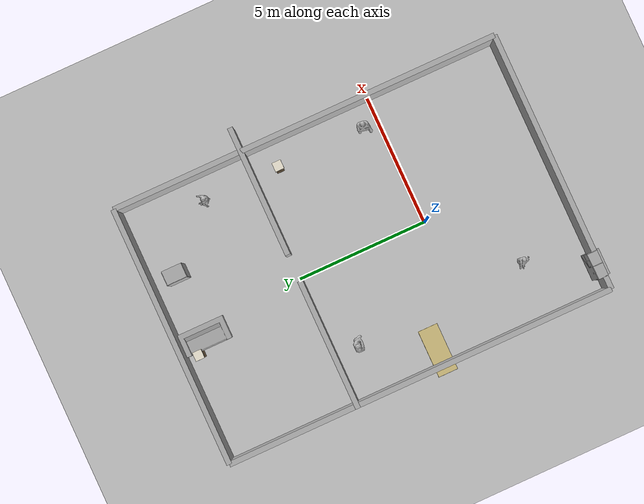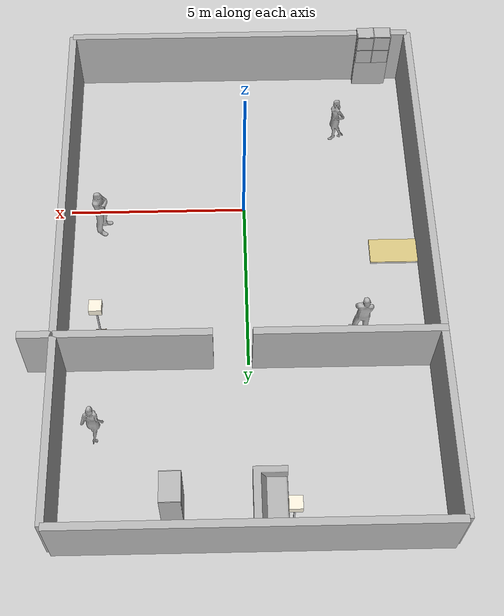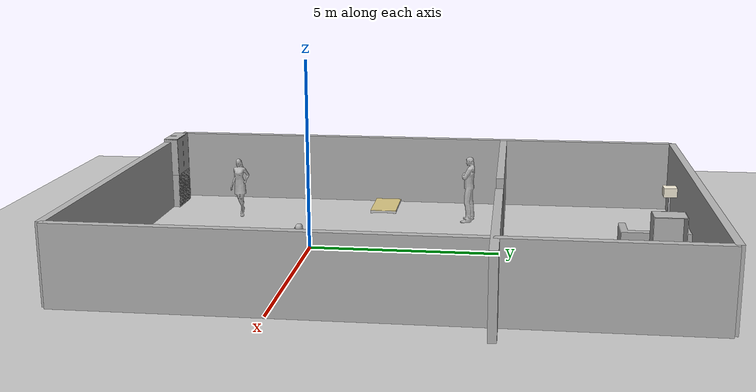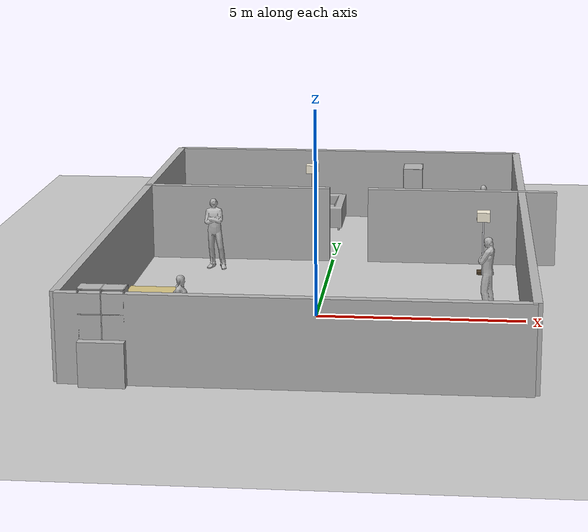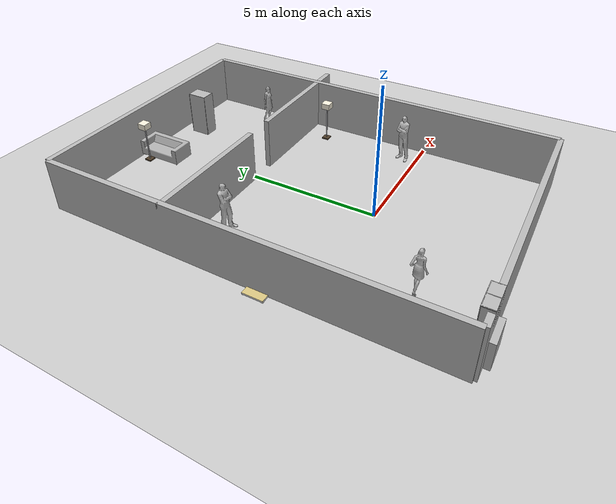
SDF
<sdf version="1.4">
 <world name="default">
  <physics type="ode">
   <gravity>0 0 -9.81</gravity>
   <ode>
    <solver><type>quick</type><iters>20</iters><sor>1.0</sor></solver>
    <constraints>
     <cfm>0.0</cfm>
     <erp>0.2</erp>
     <contact_max_correcting_vel>100.0</contact_max_correcting_vel>
     <contact_surface_layer>0.0</contact_surface_layer>
    </constraints>
   </ode>
   <real_time_update_rate>1000</real_time_update_rate>
   <max_step_size>0.001</max_step_size>
  </physics>
  <include><uri>model://sun</uri></include>
  <include><uri>model://ground_plane</uri></include>
  <model name="wall_1_model">
   <pose>0 -5 1 0 -0 0</pose>
   <static>1</static>
   <link name="wall_1_body">
    <inertial>
     <mass>1</mass>
     <inertia><ixx>1</ixx><ixy>0</ixy><ixz>0</ixz><iyy>1</iyy><iyz>0</iyz><izz>1</izz></inertia>
    </inertial>
    <collision name="collision"><geometry><box><size>10 0.2 2</size></box></geometry></collision>
    <visual name="visual"><geometry><box><size>10 0.2 2</size></box></geometry></visual>
   </link>
  </model>
  <model name="wall_2_model">
   <pose>0 10 1 0 -0 0</pose>
   <static>1</static>
   <link name="wall_2_body">
    <inertial>
     <mass>1</mass>
     <inertia><ixx>1</ixx><ixy>0</ixy><ixz>0</ixz><iyy>1</iyy><iyz>0</iyz><izz>1</izz></inertia>
    </inertial>
    <collision name="collision"><geometry><box><size>10 0.2 2</size></box></geometry></collision>
    <visual name="visual"><geometry><box><size>10 0.2 2</size></box></geometry></visual>
   </link>
  </model>
  <model name="wall_3_model">
   <pose>-5 2.5 1 0 -0 0</pose>
   <static>1</static>
   <link name="wall_3_body">
    <inertial>
     <mass>1</mass>
     <inertia><ixx>1</ixx><ixy>0</ixy><ixz>0</ixz><iyy>1</iyy><iyz>0</iyz><izz>1</izz></inertia>
    </inertial>
    <collision name="collision"><geometry><box><size>0.2 15 2</size></box></geometry></collision>
    <visual name="visual"><geometry><box><size>0.2 15 2</size></box></geometry></visual>
   </link>
  </model>
  <model name="wall_4_model">
   <pose>5 2.5 1 0 -0 0</pose>
   <static>1</static>
   <link name="wall_4_body">
    <inertial>
     <mass>1</mass>
     <inertia><ixx>1</ixx><ixy>0</ixy><ixz>0</ixz><iyy>1</iyy><iyz>0</iyz><izz>1</izz></inertia>
    </inertial>
    <collision name="collision"><geometry><box><size>0.2 15 2</size></box></geometry></collision>
    <visual name="visual"><geometry><box><size>0.2 15 2</size></box></geometry></visual>
   </link>
  </model>
  <model name="wall_5_model">
   <pose>-2.6 5 1 0 -0 0</pose>
   <static>1</static>
   <link name="wall_5_body">
    <inertial>
     <mass>1</mass>
     <inertia><ixx>1</ixx><ixy>0</ixy><ixz>0</ixz><iyy>1</iyy><iyz>0</iyz><izz>1</izz></inertia>
    </inertial>
    <collision name="collision"><geometry><box><size>5 0.2 2</size></box></geometry></collision>
    <visual name="visual"><geometry><box><size>5 0.2 2</size></box></geometry></visual>
   </link>
  </model>
  <model name="wall_6_model">
   <pose>3.43 5 1 0 -0 0</pose>
   <static>1</static>
   <link name="wall_6_body">
    <inertial>
     <mass>1</mass>
     <inertia><ixx>1</ixx><ixy>0</ixy><ixz>0</ixz><iyy>1</iyy><iyz>0</iyz><izz>1</izz></inertia>
    </inertial>
    <collision name="collision"><geometry><box><size>5 0.2 2</size></box></geometry></collision>
    <visual name="visual"><geometry><box><size>5 0.2 2</size></box></geometry></visual>
   </link>
  </model>
  <include>
   <uri>model://wardrobe</uri>
   <pose>2.000000 9.000000 0.000000 0.000000 0.000000 0.000000</pose>
  </include>
  <include>
   <uri>model://closet</uri>
   <pose>-4.000000 -5.000000 0.000000 0.000000 0.000000 0.000000</pose>
  </include>
  <include><uri>model://bench</uri><pose>-4.465430 1.502710 0.000000 0.000000 0.000000 0.000000</pose></include>
  <include><uri>model://sofa</uri><pose>-0.518195 9.000000 0.000000 0.000000 0.000000 0.000000</pose></include>
  <include>
   <name>floor_lamp_0</name>
   <uri>model://floor_lamp</uri>
   <pose>-1.000000 9.417350 0.000000 0.000000 0.000000 0.000000</pose>
  </include>
  <include>
   <name>floor_lamp_1</name>
   <uri>model://floor_lamp</uri>
   <pose>4.000000 4.00000 0.000000 0.000000 0.000000 0.000000</pose>
  </include>
  <include>
   <name>male03</name>
   <uri>model://citizen_extras_male_03</uri>
   <pose>4.0 0.53 0.01 0.0125 0.0023 -1.718</pose>
  </include>
  <light type="point" name="male03light">
   <pose>3.6 0.53 1.6 0 0 0</pose>
   <diffuse>0.5 0.5 0.5 1</diffuse>
   <specular>0.1 0.1 0.1 1</specular>
   <attenuation>
    <range>1.0</range>
    <linear>0.01</linear>
    <constant>0.3</constant>
    <quadratic>0.0</quadratic>
   </attenuation>
   <direction>0 0 -1</direction>
   <spot><inner_angle>0.6</inner_angle><outer_angle>0.8</outer_angle><falloff>1.2</falloff></spot>
   <cast_shadows>false</cast_shadows>
  </light>
  <include>
   <name>female02</name>
   <uri>model://citizen_extras_female_02</uri>
   <pose>-2.84 -2.63 0.01 0 -0.025 1.683</pose>
  </include>
  <light type="point" name="female02light">
   <pose>-2.5 -2.63 1.5 0 0 0</pose>
   <diffuse>0.5 0.5 0.5 1</diffuse>
   <specular>0.1 0.1 0.1 1</specular>
   <attenuation>
    <range>1.0</range>
    <linear>0.01</linear>
    <constant>0.3</constant>
    <quadratic>0.0</quadratic>
   </attenuation>
   <direction>0 0 -1</direction>
   <spot><inner_angle>0.6</inner_angle><outer_angle>0.8</outer_angle><falloff>1.2</falloff></spot>
   <cast_shadows>false</cast_shadows>
  </light>
  <light type="point" name="female03light">
   <pose>-3.0 6.2 1.5 0 0 0</pose>
   <diffuse>0.5 0.5 0.5 1</diffuse>
   <specular>0.1 0.1 0.1 1</specular>
   <attenuation>
    <range>1.0</range>
    <linear>0.01</linear>
    <constant>0.3</constant>
    <quadratic>0.0</quadratic>
   </attenuation>
   <direction>0 0 -1</direction>
   <spot><inner_angle>0.6</inner_angle><outer_angle>0.8</outer_angle><falloff>1.2</falloff></spot>
   <cast_shadows>false</cast_shadows>
  </light>
  <include>
   <name>female02bis</name>
   <uri>model://citizen_extras_female_02</uri>
   <pose>4.000000 7.000000 0.000000 0.000000 0.000000 0.000000</pose>
  </include>
  <model name="drc_practice_weighted_door">
   <pose>0.167665 4.97339 0 0 -0 0</pose>
   <scale>1 1 1</scale>
   <link name="door">
    <pose>0.167667 4.97339 2.04 3.14159 1e-06 8e-06</pose>
    <velocity>-0 0 0 -0 -0 -0</velocity>
    <acceleration>-3e-06 -0 -9e-06 -3e-06 -4e-06 2e-06</acceleration>
    <wrench>-0.00012 -9e-06 -0.000367 0 -0 0</wrench>
   </link>
   <link name="frame">
    <pose>0.227665 4.97289 0 0 -0 0</pose>
    <velocity>-0 -0 -0 0 -0 0</velocity>
    <acceleration>1.2e-05 0 0 0 -0 0</acceleration>
    <wrench>0.000228 2e-06 5e-06 0 -0 0</wrench>
   </link>
   <link name="handles">
    <pose>0.982067 4.9034 1.05 2e-06 -1e-06 -3.14159</pose>
    <velocity>0 -0 -0 0 2.6e-05 0</velocity>
    <acceleration>-3e-06 1e-06 -1.5e-05 1e-05 8e-06 -1e-05</acceleration>
    <wrench>-7e-06 1e-06 -3e-05 0 -0 0</wrench>
   </link>
  </model>
  <light type="point" name="female02bislight">
   <pose>3.8 6.7 1.5 0 0 0</pose>
   <diffuse>0.5 0.5 0.5 1</diffuse>
   <specular>0.1 0.1 0.1 1</specular>
   <attenuation>
    <range>1.0</range>
    <linear>0.01</linear>
    <constant>0.3</constant>
    <quadratic>0.0</quadratic>
   </attenuation>
   <direction>0 0 -1</direction>
   <spot><inner_angle>0.6</inner_angle><outer_angle>0.8</outer_angle><falloff>1.2</falloff></spot>
   <cast_shadows>false</cast_shadows>
  </light>
  <include>
   <name>male03bis</name>
   <uri>model://citizen_extras_male_03</uri>
   <pose>-3.000000 4.000000 0.000000 0.000000 0.000000 0.000000</pose>
  </include>
  <light type="point" name="male03bislight">
   <pose>-2.9 3.7 1.5 0 0 0</pose>
   <diffuse>0.5 0.5 0.5 1</diffuse>
   <specular>0.1 0.1 0.1 1</specular>
   <attenuation>
    <range>1.0</range>
    <linear>0.01</linear>
    <constant>0.3</constant>
    <quadratic>0.0</quadratic>
   </attenuation>
   <direction>0 0 -1</direction>
   <spot><inner_angle>0.6</inner_angle><outer_angle>0.8</outer_angle><falloff>1.2</falloff></spot>
   <cast_shadows>false</cast_shadows>
  </light>
 </world>
</sdf>

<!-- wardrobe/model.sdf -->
<sdf version="1.6">
  <model name="rwc2022/wardrobe">
    <static>true</static>
    <link name="1_link">
      <collision name="1_col">
        <geometry>
          <box>
            <size>0.55 0.015 1.76</size>
          </box>
        </geometry>
      </collision>
      <visual name="1_vis">
        <geometry>
          <box>
            <size>0.55 0.015 1.76</size>
          </box>
        </geometry>
      </visual>
      <pose>0.0 -0.39 0.88 0 0 0</pose>
    </link>
    <link name="2_link">
      <collision name="2_col">
        <geometry>
          <box>
            <size>0.55 0.015 1.76</size>
          </box>
        </geometry>
      </collision>
      <visual name="2_vis">
        <geometry>
          <box>
            <size>0.55 0.015 1.76</size>
          </box>
        </geometry>
      </visual>
      <pose>0.0 0.39 0.88 0 0 0</pose>
    </link>
    <link name="3_link">
      <collision name="3_col">
        <geometry>
          <box>
            <size>0.015 0.795 1.76</size>
          </box>
        </geometry>
      </collision>
      <visual name="3_vis">
        <geometry>
          <box>
            <size>0.015 0.795 1.76</size>
          </box>
        </geometry>
      </visual>
      <pose>-0.2675 0.0 0.88 0 0 0</pose>
    </link>
    <link name="4_link">
      <collision name="4_col">
        <geometry>
          <box>
            <size>0.535 0.765 0.015</size>
          </box>
        </geometry>
      </collision>
      <visual name="4_vis">
        <geometry>
          <box>
            <size>0.535 0.765 0.015</size>
          </box>
        </geometry>
      </visual>
      <pose>0.0075 0.0 1.7525 0 0 0</pose>
    </link>
    <link name="5_link">
      <collision name="5_col">
        <geometry>
          <box>
            <size>0.535 0.765 0.02</size>
          </box>
        </geometry>
      </collision>
      <visual name="5_vis">
        <geometry>
          <box>
            <size>0.535 0.765 0.02</size>
          </box>
        </geometry>
      </visual>
      <pose>0.0075 0.0 0.455 0 0 0</pose>
    </link>
    <link name="6_link">
      <collision name="6_col">
        <geometry>
          <box>
            <size>0.535 0.765 0.02</size>
          </box>
        </geometry>
      </collision>
      <visual name="6_vis">
        <geometry>
          <box>
            <size>0.535 0.765 0.02</size>
          </box>
        </geometry>
      </visual>
      <pose>0.0075 0.0 0.095 0 0 0</pose>
    </link>
    <link name="7_link">
      <collision name="7_col">
        <geometry>
          <box>
            <size>0.02 0.77 0.9</size>
          </box>
        </geometry>
      </collision>
      <visual name="7_vis">
        <geometry>
          <box>
            <size>0.02 0.77 0.09</size>
          </box>
        </geometry>
      </visual>
      <pose>0.26 0.0 0.045 0 0 0</pose>
    </link>
    <link name="in_front_of">
      <virtual_volume name="in_front_of_vv">
        <geometry>
          <box>
            <size>0.2 0.2975 0.01</size>
          </box>
        </geometry>
        <pose>0.775 0.0 0.005 0 0 0</pose>
      </virtual_volume>
    </link>
    <link name="shelf1">
      <virtual_volume name="shelf1_vv">
        <geometry>
          <box>
            <size>0.515 0.705 0.25</size>
          </box>
        </geometry>
        <pose>0.0075 0.0 0.25 0 0 0</pose>
      </virtual_volume>
    </link>
    <link name="shelf2">
      <virtual_volume name="shelf2_vv">
        <geometry>
          <box>
            <size>0.515 0.705 0.25</size>
          </box>
        </geometry>
        <pose>0.0075 0.0 0.61 0 0 0</pose>
      </virtual_volume>
    </link>
    <link name="on_top_of">
      <virtual_volume name="on_top_of_vv">
        <geometry>
          <box>
            <size>0.515 0.705 0.25</size>
          </box>
        </geometry>
        <pose>0.0075 0.0 0.61 0 0 0</pose>
      </virtual_volume>
    </link>
  </model>
</sdf>

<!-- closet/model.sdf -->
<sdf version="1.6">
  <model name="reo2016/closet">
    <link name="1_link">
      <collision name="1_col">
        <geometry>
          <box>
            <size>1.0 0.6 0.995</size>
          </box>
        </geometry>
      </collision>
      <visual name="1_vis">
        <geometry>
          <box>
            <size>1.0 0.6 0.995</size>
          </box>
        </geometry>
      </visual>
      <pose>0 0 0.4975 0 0 0</pose>
    </link>
    <link name="2_link">
      <collision name="2_col">
        <geometry>
          <box>
            <size>0.022 0.4 1.1</size>
          </box>
        </geometry>
      </collision>
      <visual name="2_vis">
        <geometry>
          <box>
            <size>0.022 0.4 1.1</size>
          </box>
        </geometry>
      </visual>
      <pose>-0.489 0.1 1.545 0 0 0</pose>
    </link>
    <link name="3_link">
      <collision name="3_col">
        <geometry>
          <box>
            <size>0.022 0.4 1.1</size>
          </box>
        </geometry>
      </collision>
      <visual name="3_vis">
        <geometry>
          <box>
            <size>0.022 0.4 1.1</size>
          </box>
        </geometry>
      </visual>
      <pose>0.0 0.1 1.545 0 0 0</pose>
    </link>
    <link name="4_link">
      <collision name="4_col">
        <geometry>
          <box>
            <size>0.022 0.4 1.1</size>
          </box>
        </geometry>
      </collision>
      <visual name="4_vis">
        <geometry>
          <box>
            <size>0.022 0.4 1.1</size>
          </box>
        </geometry>
      </visual>
      <pose>0.489 0.1 1.545 0 0 0</pose>
    </link>
    <link name="5_link">
      <collision name="5_col">
        <geometry>
          <box>
            <size>1.0 0.4 0.022</size>
          </box>
        </geometry>
      </collision>
      <visual name="5_vis">
        <geometry>
          <box>
            <size>1.0 0.4 0.022</size>
          </box>
        </geometry>
      </visual>
      <pose>0.0 0.1 1.541 0 0 0</pose>
    </link>
    <link name="6_link">
      <collision name="6_col">
        <geometry>
          <box>
            <size>1.0 0.4 0.022</size>
          </box>
        </geometry>
      </collision>
      <visual name="6_vis">
        <geometry>
          <box>
            <size>1.0 0.4 0.022</size>
          </box>
        </geometry>
      </visual>
      <pose>0.0 0.1 2.084 0 0 0</pose>
    </link>
    <link name="7_link">
      <collision name="7_col">
        <geometry>
          <box>
            <size>1.0 0.022 2.095</size>
          </box>
        </geometry>
      </collision>
      <visual name="7_vis">
        <geometry>
          <box>
            <size>1.0 0.022 2.095</size>
          </box>
        </geometry>
      </visual>
      <pose>0.0 0.289 1.0475 0 0 0</pose>
    </link>
    <link name="on_top_of">
      <virtual_volume name="on_top_of_vv">
        <geometry>
          <box>
            <size>1.0 0.55 0.215</size>
          </box>
        </geometry>
        <pose>0.0 0.025 1.1425 0 0 0</pose>
      </virtual_volume>
    </link>
    <link name="in_front_of">
      <virtual_volume name="in_front_of_vv">
        <geometry>
          <box>
            <size>1.0 0.2 0.01</size>
          </box>
        </geometry>
        <pose>0.0 -1.0 0.005 0 0 0</pose>
      </virtual_volume>
    </link>
    <static>true</static>
  </model>
</sdf>

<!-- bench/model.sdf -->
<sdf version="1.5">
  <model name="bench">
    <link name="link">
      <pose>0 0 0 0 0 0</pose>
      <inertial>
        <mass>20.0</mass>
        <inertia>
          <ixx>2.43</ixx>
          <ixy>0</ixy>
          <ixz>0</ixz>
          <iyy>1.10</iyy>
          <iyz>0</iyz>
          <izz>3.47</izz>
        </inertia>
      </inertial>
      <collision name="collision">
        <pose>0 0 0.05 0 0 0</pose>
        <geometry>
          <mesh>
            <uri>model://bench/meshes/bench.dae</uri>
            <scale>1 1 1</scale>
          </mesh>
        </geometry>
      </collision>
      <visual name="visual">
        <pose>0 0 0.05 0 0 0</pose>
        <geometry>
          <mesh>
            <uri>model://bench/meshes/bench.dae</uri>
            <scale>1 1 1</scale>
          </mesh>
        </geometry>
      </visual>
    </link>
  </model>
</sdf>

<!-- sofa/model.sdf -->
<sdf version='1.6'>
  <model name='sofa'>
    <link name='link_0'>
      <pose frame=''>0 0 0 0 -0 0</pose>
      <inertial>
        <mass>20</mass>
        <pose frame=''>0.05 0.02 0.35 0 0 0</pose>
        <inertia>
          <ixx>6.5189973924</ixx>
          <ixy>0</ixy>
          <ixz>0</ixz>
          <iyy>2.3789990484</iyy>
          <iyz>0</iyz>
          <izz>7.0229971908</izz>
        </inertia>
      </inertial>
      <visual name='visual'>
        <pose frame=''>0 0 0 0 -0 0</pose>
        <geometry>
          <mesh>
            <uri>file://isr-testbed/sofa/sofa.dae</uri>
            <scale>1 1 1</scale>
          </mesh>
        </geometry>
        <material>
          <lighting>1</lighting>
          <script>
            <uri>file://media/materials/scripts/gazebo.material</uri>
            <name>Gazebo/DepthMapVS</name>
          </script>
          <ambient>0.3 0.3 0.3 1</ambient>
          <diffuse>0.7 0.7 0.7 1</diffuse>
          <specular>0.01 0.01 0.01 1</specular>
          <emissive>0 0 0 1</emissive>
        </material>
        <cast_shadows>1</cast_shadows>
        <transparency>0</transparency>
      </visual>
      <collision name='collision'>
        <laser_retro>0</laser_retro>
        <max_contacts>10</max_contacts>
        <pose frame=''>0.05 0 0.2 0 0 0</pose>
        <geometry>
          <box>
            <size>0.93 1.83 0.37</size>
          </box>
        </geometry>
        <surface>
          <friction>
            <ode>
              <mu>1</mu>
              <mu2>1</mu2>
              <fdir1>0 0 0</fdir1>
              <slip1>0</slip1>
              <slip2>0</slip2>
            </ode>
            <torsional>
              <coefficient>1</coefficient>
              <patch_radius>0</patch_radius>
              <surface_radius>0</surface_radius>
              <use_patch_radius>1</use_patch_radius>
              <ode>
                <slip>0</slip>
              </ode>
            </torsional>
          </friction>
          <bounce>
            <restitution_coefficient>0</restitution_coefficient>
            <threshold>1e+06</threshold>
          </bounce>
          <contact>
            <collide_without_contact>0</collide_without_contact>
            <collide_without_contact_bitmask>1</collide_without_contact_bitmask>
            <collide_bitmask>1</collide_bitmask>
            <ode>
              <soft_cfm>0</soft_cfm>
              <soft_erp>0.2</soft_erp>
              <kp>1e+13</kp>
              <kd>1</kd>
              <max_vel>0.01</max_vel>
              <min_depth>0</min_depth>
            </ode>
            <bullet>
              <split_impulse>1</split_impulse>
              <split_impulse_penetration_threshold>-0.01</split_impulse_penetration_threshold>
              <soft_cfm>0</soft_cfm>
              <soft_erp>0.2</soft_erp>
              <kp>1e+13</kp>
              <kd>1</kd>
            </bullet>
          </contact>
        </surface>
      </collision>
      <collision name='collision_back'>
        <laser_retro>0</laser_retro>
        <max_contacts>10</max_contacts>
        <pose frame=''>0.35 0 0.5 0 0 0</pose>
        <geometry>
          <box>
            <size>0.3 1.83 0.5</size>
          </box>
        </geometry>
        <surface>
          <friction>
            <ode>
              <mu>1</mu>
              <mu2>1</mu2>
              <fdir1>0 0 0</fdir1>
              <slip1>0</slip1>
              <slip2>0</slip2>
            </ode>
            <torsional>
              <coefficient>1</coefficient>
              <patch_radius>0</patch_radius>
              <surface_radius>0</surface_radius>
              <use_patch_radius>1</use_patch_radius>
              <ode>
                <slip>0</slip>
              </ode>
            </torsional>
          </friction>
          <bounce>
            <restitution_coefficient>0</restitution_coefficient>
            <threshold>1e+06</threshold>
          </bounce>
          <contact>
            <collide_without_contact>0</collide_without_contact>
            <collide_without_contact_bitmask>1</collide_without_contact_bitmask>
            <collide_bitmask>1</collide_bitmask>
            <ode>
              <soft_cfm>0</soft_cfm>
              <soft_erp>0.2</soft_erp>
              <kp>1e+13</kp>
              <kd>1</kd>
              <max_vel>0.01</max_vel>
              <min_depth>0</min_depth>
            </ode>
            <bullet>
              <split_impulse>1</split_impulse>
              <split_impulse_penetration_threshold>-0.01</split_impulse_penetration_threshold>
              <soft_cfm>0</soft_cfm>
              <soft_erp>0.2</soft_erp>
              <kp>1e+13</kp>
              <kd>1</kd>
            </bullet>
          </contact>
        </surface>
      </collision>
      <collision name='collision_arm_left'>
        <laser_retro>0</laser_retro>
        <max_contacts>10</max_contacts>
        <pose frame=''>0 -0.8 0.5 0 0 0</pose>
        <geometry>
          <box>
            <size>0.8 0.25 0.5</size>
          </box>
        </geometry>
        <surface>
          <friction>
            <ode>
              <mu>1</mu>
              <mu2>1</mu2>
              <fdir1>0 0 0</fdir1>
              <slip1>0</slip1>
              <slip2>0</slip2>
            </ode>
            <torsional>
              <coefficient>1</coefficient>
              <patch_radius>0</patch_radius>
              <surface_radius>0</surface_radius>
              <use_patch_radius>1</use_patch_radius>
              <ode>
                <slip>0</slip>
              </ode>
            </torsional>
          </friction>
          <bounce>
            <restitution_coefficient>0</restitution_coefficient>
            <threshold>1e+06</threshold>
          </bounce>
          <contact>
            <collide_without_contact>0</collide_without_contact>
            <collide_without_contact_bitmask>1</collide_without_contact_bitmask>
            <collide_bitmask>1</collide_bitmask>
            <ode>
              <soft_cfm>0</soft_cfm>
              <soft_erp>0.2</soft_erp>
              <kp>1e+13</kp>
              <kd>1</kd>
              <max_vel>0.01</max_vel>
              <min_depth>0</min_depth>
            </ode>
            <bullet>
              <split_impulse>1</split_impulse>
              <split_impulse_penetration_threshold>-0.01</split_impulse_penetration_threshold>
              <soft_cfm>0</soft_cfm>
              <soft_erp>0.2</soft_erp>
              <kp>1e+13</kp>
              <kd>1</kd>
            </bullet>
          </contact>
        </surface>
      </collision>
      <collision name='collision_arm_right'>
        <laser_retro>0</laser_retro>
        <max_contacts>10</max_contacts>
        <pose frame=''>0 0.8 0.5 0 0 0</pose>
        <geometry>
          <box>
            <size>0.8 0.25 0.5</size>
          </box>
        </geometry>
        <surface>
          <friction>
            <ode>
              <mu>1</mu>
              <mu2>1</mu2>
              <fdir1>0 0 0</fdir1>
              <slip1>0</slip1>
              <slip2>0</slip2>
            </ode>
            <torsional>
              <coefficient>1</coefficient>
              <patch_radius>0</patch_radius>
              <surface_radius>0</surface_radius>
              <use_patch_radius>1</use_patch_radius>
              <ode>
                <slip>0</slip>
              </ode>
            </torsional>
          </friction>
          <bounce>
            <restitution_coefficient>0</restitution_coefficient>
            <threshold>1e+06</threshold>
          </bounce>
          <contact>
            <collide_without_contact>0</collide_without_contact>
            <collide_without_contact_bitmask>1</collide_without_contact_bitmask>
            <collide_bitmask>1</collide_bitmask>
            <ode>
              <soft_cfm>0</soft_cfm>
              <soft_erp>0.2</soft_erp>
              <kp>1e+13</kp>
              <kd>1</kd>
              <max_vel>0.01</max_vel>
              <min_depth>0</min_depth>
            </ode>
            <bullet>
              <split_impulse>1</split_impulse>
              <split_impulse_penetration_threshold>-0.01</split_impulse_penetration_threshold>
              <soft_cfm>0</soft_cfm>
              <soft_erp>0.2</soft_erp>
              <kp>1e+13</kp>
              <kd>1</kd>
            </bullet>
          </contact>
        </surface>
      </collision>
    </link>
    <static>0</static>
    <allow_auto_disable>1</allow_auto_disable>
  </model>
</sdf>

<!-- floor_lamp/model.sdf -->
<sdf version="1.9">
  <model name="floor_lamp">
    <static>true</static>
    <link name="body">

      <collision name="base_collision">
        <pose>0 0 0.03 0 0 0</pose>
        <geometry><box><size>0.28 0.28 0.06</size></box></geometry>
      </collision>
      <collision name="stem_collision">
        <pose>0 0 0.80 0 0 0</pose>
        <geometry><box><size>0.04 0.04 1.50</size></box></geometry>
      </collision>
      <collision name="shade_collision">
        <pose>0 0 1.55 0 0 0</pose>
        <geometry><box><size>0.34 0.34 0.24</size></box></geometry>
      </collision>
      <visual name="base_visual">
        <pose>0 0 0.03 0 0 0</pose>
        <geometry><box><size>0.28 0.28 0.06</size></box></geometry>
        <material>
          <ambient>0.20 0.16 0.11 1</ambient>
          <diffuse>0.30 0.24 0.16 1</diffuse>
        </material>
      </visual>

      <visual name="stem_visual">
        <pose>0 0 0.80 0 0 0</pose>
        <geometry><box><size>0.04 0.04 1.50</size></box></geometry>
        <material><ambient>0.62 0.62 0.63 1</ambient><diffuse>0.78 0.78 0.80 1</diffuse></material>
      </visual>
      <visual name="shade_visual">
        <pose>0 0 1.55 0 0 0</pose>
        <geometry><box><size>0.34 0.34 0.24</size></box></geometry>
        <material><ambient>0.92 0.89 0.80 1</ambient><diffuse>0.98 0.95 0.87 1</diffuse></material>
      </visual>

    </link>
  </model>
</sdf>

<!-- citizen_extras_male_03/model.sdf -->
<sdf version="1.4">

 <model name="citizen_extras_male_03">

    <link name="link">

     <inertial>

       <mass>20</mass>

       <inertia>

         <ixx>0.0</ixx>

         <ixy>0.0</ixy>

         <ixz>0.0</ixz>

         <iyy>0.0</iyy>

         <iyz>0.0</iyz>

         <izz>0.0</izz>

       </inertia>

     </inertial>

     <collision name="collision">

       <pose>0 0 0 0 0 0</pose>

       <geometry>

         <mesh>

           <uri>model://citizen_extras_male_03/meshes/mesh.dae</uri>

         </mesh>

       </geometry>

     </collision>

     <visual name="visual">

       <pose>0 0 0 0 0 0</pose>

       <geometry>

         <mesh>

           <uri>model://citizen_extras_male_03/meshes/mesh.dae</uri>

         </mesh>

       </geometry>

     </visual>

    </link>

 </model>
</sdf>

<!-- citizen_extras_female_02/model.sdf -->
<sdf version="1.4">

 <model name="citizen_extras_female_02">

    <link name="link">

     <inertial>

       <mass>20</mass>

       <inertia>

         <ixx>0.0</ixx>

         <ixy>0.0</ixy>

         <ixz>0.0</ixz>

         <iyy>0.0</iyy>

         <iyz>0.0</iyz>

         <izz>0.0</izz>

       </inertia>

     </inertial>

     <collision name="collision">

       <pose>0 0 0 0 0 0</pose>

       <geometry>

         <mesh>

           <uri>model://citizen_extras_female_02/meshes/mesh.dae</uri>

         </mesh>

       </geometry>

     </collision>

     <visual name="visual">

       <pose>0 0 0 0 0 0</pose>

       <geometry>

         <mesh>

           <uri>model://citizen_extras_female_02/meshes/mesh.dae</uri>

         </mesh>

       </geometry>

     </visual>

    </link>

 </model>
</sdf>
